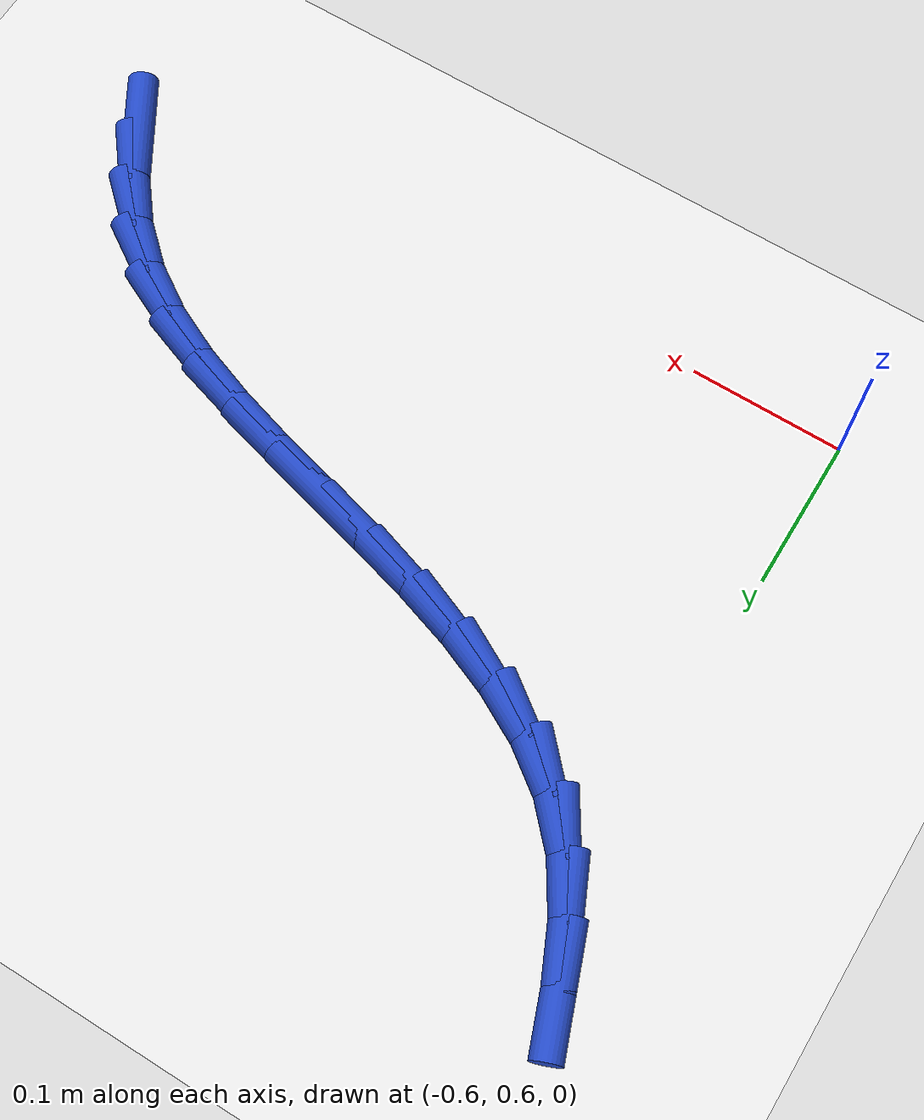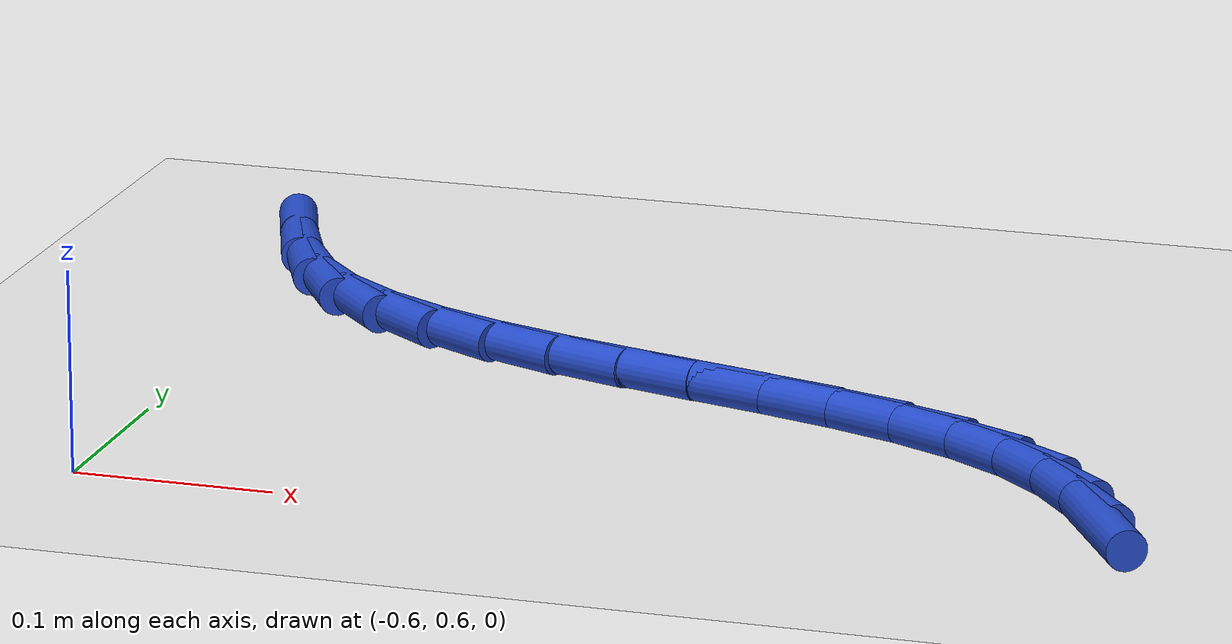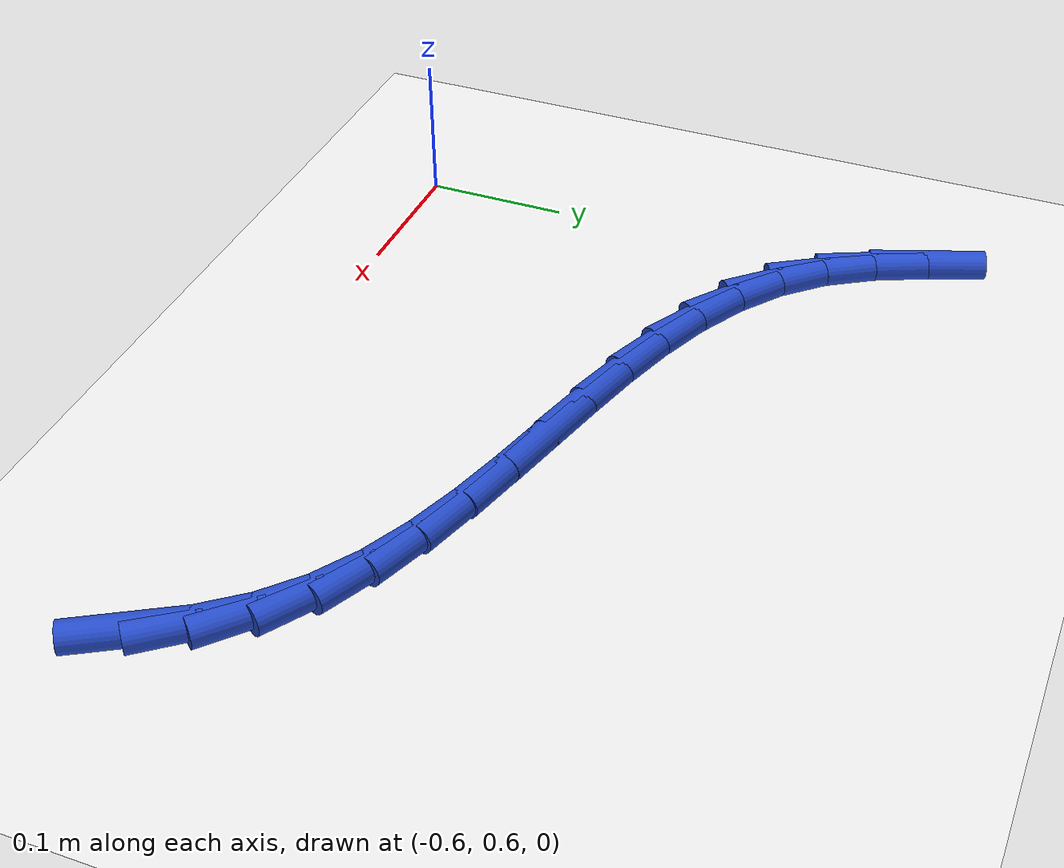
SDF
<sdf version="1.6">
 <world name="default">
  <model name="ground_plane">
   <static>1</static>
   <link name="link">
    <collision name="collision">
     <geometry><plane><normal>0 0 1</normal><size>100 100</size></plane></geometry>
     <surface><friction><ode><mu>100</mu><mu2>50</mu2></ode></friction></surface>
    </collision>
    <visual name="visual">
     <cast_shadows>0</cast_shadows>
     <geometry><plane><normal>0 0 1</normal><size>100 100</size></plane></geometry>
     <material>
      <script><uri>file://media/materials/scripts/gazebo.material</uri><name>Gazebo/WhiteGlow</name></script>
     </material>
    </visual>
   </link>
  </model>
  <model name="line">
   <link name="link_17">
    <pose>-0.11125711126938126 0.6428656065075691 0.01 0 1.57 -1.0427288075779644</pose>
    <collision name="collision">
     <geometry><cylinder><radius>0.01</radius><length>0.08</length></cylinder></geometry>
    </collision>
    <visual name="visual">
     <material>
      <script><name>Gazebo/Blue</name><uri>file://media/materials/scripts/gazebo.material</uri></script>
     </material>
     <geometry><cylinder><radius>0.01</radius><length>0.08</length></cylinder></geometry>
    </visual>
   </link>
   <link name="link_18">
    <pose>-0.12878385343663895 0.6729119285789205 0.01 0 1.57 -0.9039636330388187</pose>
    <collision name="collision">
     <geometry><cylinder><radius>0.01</radius><length>0.08</length></cylinder></geometry>
    </collision>
    <visual name="visual">
     <material>
      <script><name>Gazebo/Blue</name><uri>file://media/materials/scripts/gazebo.material</uri></script>
     </material>
     <geometry><cylinder><radius>0.01</radius><length>0.08</length></cylinder></geometry>
    </visual>
   </link>
   <link name="link_19">
    <pose>-0.14984038001809402 0.6996635642617084 0.01 0 1.57 -0.7440048097767803</pose>
    <collision name="collision">
     <geometry><cylinder><radius>0.01</radius><length>0.08</length></cylinder></geometry>
    </collision>
    <visual name="visual">
     <material>
      <script><name>Gazebo/Blue</name><uri>file://media/materials/scripts/gazebo.material</uri></script>
     </material>
     <geometry><cylinder><radius>0.01</radius><length>0.08</length></cylinder></geometry>
    </visual>
   </link>
   <link name="link_20">
    <pose>-0.17485049777258305 0.7226843841394761 0.01 0 1.57 -0.5787754051907241</pose>
    <collision name="collision">
     <geometry><cylinder><radius>0.01</radius><length>0.08</length></cylinder></geometry>
    </collision>
    <visual name="visual">
     <material>
      <script><name>Gazebo/Blue</name><uri>file://media/materials/scripts/gazebo.material</uri></script>
     </material>
     <geometry><cylinder><radius>0.01</radius><length>0.08</length></cylinder></geometry>
    </visual>
   </link>
   <link name="link_21">
    <pose>-0.20402771044870213 0.7417493468965731 0.01 0 1.57 -0.4473238556022628</pose>
    <collision name="collision">
     <geometry><cylinder><radius>0.01</radius><length>0.08</length></cylinder></geometry>
    </collision>
    <visual name="visual">
     <material>
      <script><name>Gazebo/Blue</name><uri>file://media/materials/scripts/gazebo.material</uri></script>
     </material>
     <geometry><cylinder><radius>0.01</radius><length>0.08</length></cylinder></geometry>
    </visual>
   </link>
   <link name="link_22">
    <pose>-0.23676611170035805 0.757455880284583 0.01 0 1.57 -0.3547017166186103</pose>
    <collision name="collision">
     <geometry><cylinder><radius>0.01</radius><length>0.08</length></cylinder></geometry>
    </collision>
    <visual name="visual">
     <material>
      <script><name>Gazebo/Blue</name><uri>file://media/materials/scripts/gazebo.material</uri></script>
     </material>
     <geometry><cylinder><radius>0.01</radius><length>0.08</length></cylinder></geometry>
    </visual>
   </link>
   <link name="link_23">
    <pose>-0.27226025260397335 0.7706016995529387 0.01 0 1.57 -0.2951154553681825</pose>
    <collision name="collision">
     <geometry><cylinder><radius>0.01</radius><length>0.08</length></cylinder></geometry>
    </collision>
    <visual name="visual">
     <material>
      <script><name>Gazebo/Blue</name><uri>file://media/materials/scripts/gazebo.material</uri></script>
     </material>
     <geometry><cylinder><radius>0.01</radius><length>0.08</length></cylinder></geometry>
    </visual>
   </link>
   <link name="link_24">
    <pose>-0.3097046842359704 0.7819845199510725 0.01 0 1.57 -0.26367398483485727</pose>
    <collision name="collision">
     <geometry><cylinder><radius>0.01</radius><length>0.08</length></cylinder></geometry>
    </collision>
    <visual name="visual">
     <material>
      <script><name>Gazebo/Blue</name><uri>file://media/materials/scripts/gazebo.material</uri></script>
     </material>
     <geometry><cylinder><radius>0.01</radius><length>0.08</length></cylinder></geometry>
    </visual>
   </link>
   <link name="link_25">
    <pose>-0.3482939576727716 0.7924020567284175 0.01 0 1.57 -0.2574578265659017</pose>
    <collision name="collision">
     <geometry><cylinder><radius>0.01</radius><length>0.08</length></cylinder></geometry>
    </collision>
    <visual name="visual">
     <material>
      <script><name>Gazebo/Blue</name><uri>file://media/materials/scripts/gazebo.material</uri></script>
     </material>
     <geometry><cylinder><radius>0.01</radius><length>0.08</length></cylinder></geometry>
    </visual>
   </link>
   <link name="link_26">
    <pose>-0.3872226239907994 0.8026520251344057 0.01 0 1.57 -0.27567280079762935</pose>
    <collision name="collision">
     <geometry><cylinder><radius>0.01</radius><length>0.08</length></cylinder></geometry>
    </collision>
    <visual name="visual">
     <material>
      <script><name>Gazebo/Blue</name><uri>file://media/materials/scripts/gazebo.material</uri></script>
     </material>
     <geometry><cylinder><radius>0.01</radius><length>0.08</length></cylinder></geometry>
    </visual>
   </link>
   <link name="link_27">
    <pose>-0.42568523426647625 0.8135321404184703 0.01 0 1.57 -0.3195938715465448</pose>
    <collision name="collision">
     <geometry><cylinder><radius>0.01</radius><length>0.08</length></cylinder></geometry>
    </collision>
    <visual name="visual">
     <material>
      <script><name>Gazebo/Blue</name><uri>file://media/materials/scripts/gazebo.material</uri></script>
     </material>
     <geometry><cylinder><radius>0.01</radius><length>0.08</length></cylinder></geometry>
    </visual>
   </link>
   <link name="link_28">
    <pose>-0.4628763395762243 0.8258401178300435 0.01 0 1.57 -0.39242672985644594</pose>
    <collision name="collision">
     <geometry><cylinder><radius>0.01</radius><length>0.08</length></cylinder></geometry>
    </collision>
    <visual name="visual">
     <material>
      <script><name>Gazebo/Blue</name><uri>file://media/materials/scripts/gazebo.material</uri></script>
     </material>
     <geometry><cylinder><radius>0.01</radius><length>0.08</length></cylinder></geometry>
    </visual>
   </link>
   <link name="link_29">
    <pose>-0.4979904909964664 0.8403736726185582 0.01 0 1.57 -0.4987701275690292</pose>
    <collision name="collision">
     <geometry><cylinder><radius>0.01</radius><length>0.08</length></cylinder></geometry>
    </collision>
    <visual name="visual">
     <material>
      <script><name>Gazebo/Blue</name><uri>file://media/materials/scripts/gazebo.material</uri></script>
     </material>
     <geometry><cylinder><radius>0.01</radius><length>0.08</length></cylinder></geometry>
    </visual>
   </link>
   <link name="link_30">
    <pose>-0.530222239603625 0.8579305200334474 0.01 0 1.57 -0.6428266093174635</pose>
    <collision name="collision">
     <geometry><cylinder><radius>0.01</radius><length>0.08</length></cylinder></geometry>
    </collision>
    <visual name="visual">
     <material>
      <script><name>Gazebo/Blue</name><uri>file://media/materials/scripts/gazebo.material</uri></script>
     </material>
     <geometry><cylinder><radius>0.01</radius><length>0.08</length></cylinder></geometry>
    </visual>
   </link>
   <link name="link_31">
    <pose>-0.5587661364741221 0.8793083753241426 0.01 0 1.57 -0.8242538093117706</pose>
    <collision name="collision">
     <geometry><cylinder><radius>0.01</radius><length>0.08</length></cylinder></geometry>
    </collision>
    <visual name="visual">
     <material>
      <script><name>Gazebo/Blue</name><uri>file://media/materials/scripts/gazebo.material</uri></script>
     </material>
     <geometry><cylinder><radius>0.01</radius><length>0.08</length></cylinder></geometry>
    </visual>
   </link>
   <link name="link_32">
    <pose>-0.5828169219766167 0.9053047549811906 0.01 0 1.57 -1.0140825845502763</pose>
    <collision name="collision">
     <geometry><cylinder><radius>0.01</radius><length>0.08</length></cylinder></geometry>
    </collision>
    <visual name="visual">
     <material>
      <script><name>Gazebo/Blue</name><uri>file://media/materials/scripts/gazebo.material</uri></script>
     </material>
     <geometry><cylinder><radius>0.01</radius><length>0.08</length></cylinder></geometry>
    </visual>
   </link>
   <link name="link_33">
    <pose>-0.6020519942606182 0.9362103796270338 0.01 0 1.57 -1.1456336317526408</pose>
    <collision name="collision">
     <geometry><cylinder><radius>0.01</radius><length>0.08</length></cylinder></geometry>
    </collision>
    <visual name="visual">
     <material>
      <script><name>Gazebo/Blue</name><uri>file://media/materials/scripts/gazebo.material</uri></script>
     </material>
     <geometry><cylinder><radius>0.01</radius><length>0.08</length></cylinder></geometry>
    </visual>
   </link>
   <link name="link_34">
    <pose>-0.617674485148079 0.9707139330959419 0.01 0 1.57 -1.2159758097668745</pose>
    <collision name="collision">
     <geometry><cylinder><radius>0.01</radius><length>0.08</length></cylinder></geometry>
    </collision>
    <visual name="visual">
     <material>
      <script><name>Gazebo/Blue</name><uri>file://media/materials/scripts/gazebo.material</uri></script>
     </material>
     <geometry><cylinder><radius>0.01</radius><length>0.08</length></cylinder></geometry>
    </visual>
   </link>
  </model>
 </world>
</sdf>
